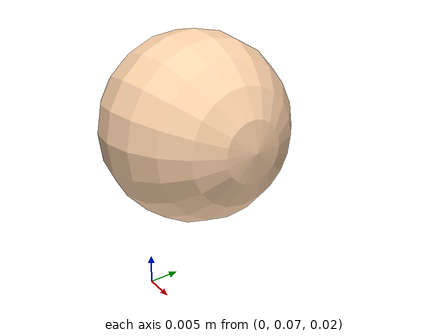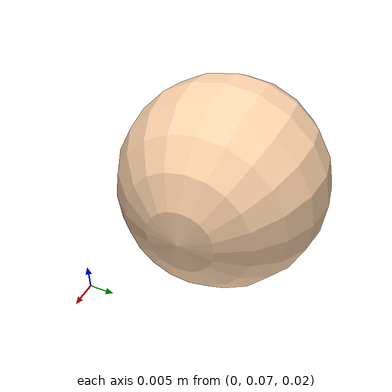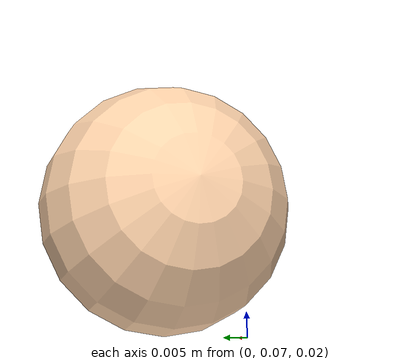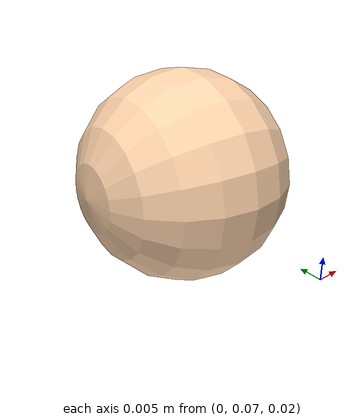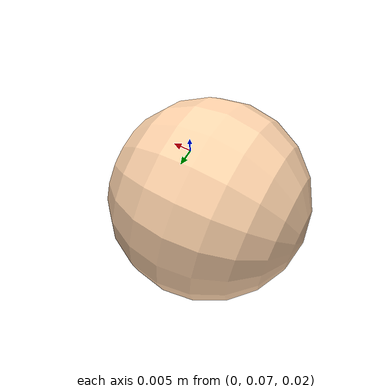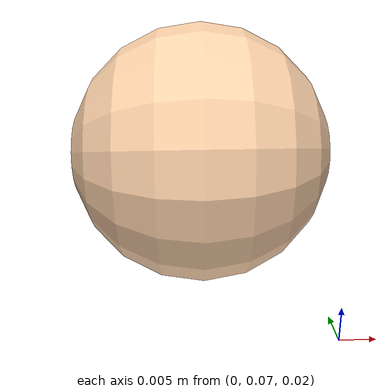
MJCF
<mujoco model="montessori_object_4">
    <compiler angle="radian" meshdir="." autolimits="true" inertiafromgeom="true"/>
    <default>
        <default class="montessori_object_4_collision">
            <geom rgba="1.0 0.83 0.67 1.0"/>
        </default>
    </default>
    <worldbody>
        <body name="montessori_object_4" pos="-0.0175 0.091 0.04" quat="0.707 0 0.707 0">
            <freejoint/>
            <inertial mass="0.013717278838157654" pos="0.0 0.0 0.0" quat="1.0 0.0 0.0 0.0" diaginertia="1.2099874311388703e-06 1.2099874311388703e-06 1.2099874311388703e-06"/>
			<geom name="MontessoriObject4" type="sphere" size="0.02" class="montessori_object_4_collision"/>
        </body>
    </worldbody>
</mujoco>
